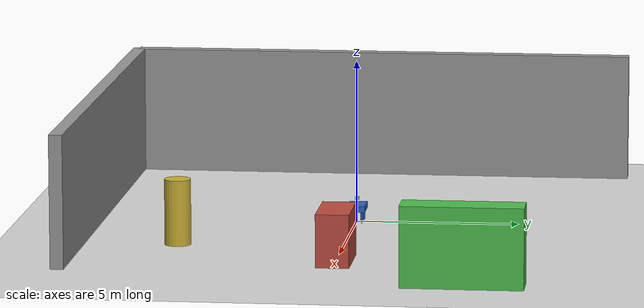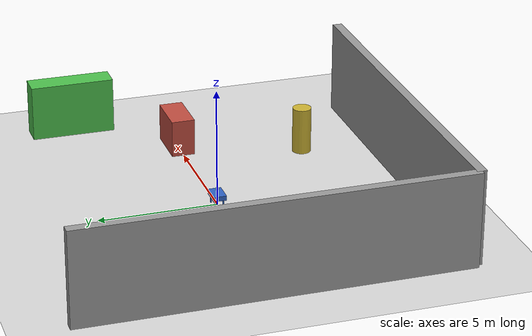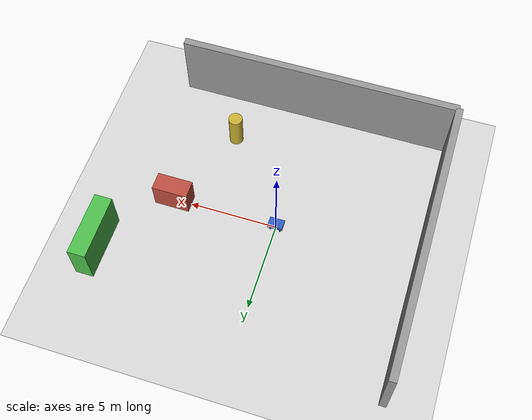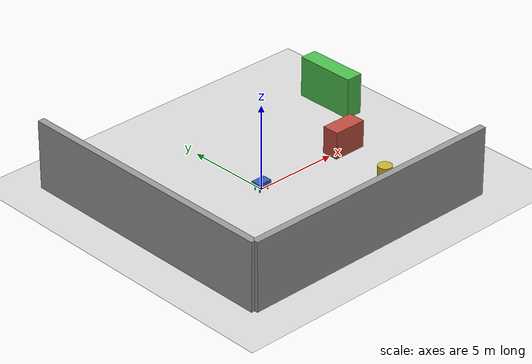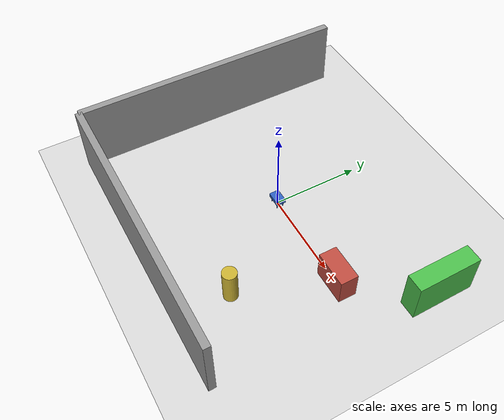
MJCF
<!-- MapPilot MuJoCo — 平地测试场景
     LiDAR: mujoco_ray_caster plugin (https://github.com/Albusgive/mujoco_ray_caster)
     编译后需设置: export MUJOCO_PLUGIN_PATH=/path/to/mujoco/build/bin/mujoco_plugin
-->
<mujoco model="open_field">
  <compiler angle="radian" autolimits="true"/>
  <option gravity="0 0 -9.81" timestep="0.002" integrator="RK4"/>

  <!-- ── mujoco_ray_caster plugin 声明 ──────────────────────────────── -->
  <extension>
    <plugin plugin="mujoco.sensor.ray_caster_lidar"/>
  </extension>

  <asset>
    <texture name="grid" type="2d" builtin="checker"
             rgb1=".92 .92 .92" rgb2=".78 .78 .78" width="512" height="512"/>
    <material name="grid_mat"  texture="grid" texrepeat="10 10" reflectance="0.05"/>
    <material name="robot_mat" rgba=".18 .38 .76 1"/>
    <material name="lidar_mat" rgba=".0 .78 .85 1"/>
    <material name="obs_mat"   rgba=".75 .3 .25 1"/>
  </asset>

  <worldbody>
    <!-- 地面 -->
    <geom name="floor" type="plane" size="80 80 0.1"
          material="grid_mat" conaffinity="1" condim="3"/>

    <!-- 测试障碍物（用于验证 LiDAR 命中）-->
    <geom name="box1"  type="box"      size="1.0 0.5 0.8" pos=" 6  0  0.8" material="obs_mat" conaffinity="1"/>
    <geom name="box2"  type="box"      size="0.5 1.8 1.2" pos=" 9  4  1.2" rgba=".3 .75 .3 1" conaffinity="1"/>
    <geom name="cyl1"  type="cylinder" size="0.4 1.0"     pos=" 4 -5  1.0" rgba=".8 .7 .2 1"  conaffinity="1"/>
    <geom name="wall1" type="box"      size="0.2 8.0 2.0" pos="-8  0  2.0" rgba=".6 .6 .6 1"  conaffinity="1"/>
    <geom name="wall2" type="box"      size="8.0 0.2 2.0" pos=" 0 -8  2.0" rgba=".6 .6 .6 1"  conaffinity="1"/>

    <!-- ── 机器人（待替换为自研 MJCF）──────────────────────────────────── -->
    <body name="base_link" pos="0 0 0.45">
      <freejoint name="root"/>

      <!-- 机体 placeholder -->
      <geom name="chassis" type="box" size="0.42 0.28 0.10"
            material="robot_mat" mass="22" conaffinity="1"/>

      <!-- 腿（简化，等待自研 URDF）-->
      <geom name="leg_fl" type="capsule" size="0.035" fromto=" 0.28  0.18 -0.10  0.28  0.18 -0.42" rgba=".15 .35 .7 1" mass="0.8"/>
      <geom name="leg_fr" type="capsule" size="0.035" fromto=" 0.28 -0.18 -0.10  0.28 -0.18 -0.42" rgba=".15 .35 .7 1" mass="0.8"/>
      <geom name="leg_rl" type="capsule" size="0.035" fromto="-.28  0.18 -0.10 -.28  0.18 -0.42" rgba=".15 .35 .7 1" mass="0.8"/>
      <geom name="leg_rr" type="capsule" size="0.035" fromto="-.28 -0.18 -0.10 -.28 -0.18 -0.42" rgba=".15 .35 .7 1" mass="0.8"/>

      <!-- Livox MID-360 安装体（机体顶部中央 +0.28m）-->
      <body name="lidar_link" pos="0 0 0.28">
        <geom name="lidar_housing" type="cylinder" size="0.060 0.048"
              material="lidar_mat" mass="0.52" conaffinity="0"/>
        <geom name="lidar_pole"    type="capsule"  size="0.018"
              fromto="0 0 0  0 0 -0.13" rgba=".3 .3 .3 1" mass="0.1"/>

        <site name="lidar_site" pos="0 0 0" size="0.001"/>
      </body>

      <inertial pos="0 0 0" mass="22" diaginertia="0.75 1.15 1.15"/>
    </body>

    <!-- 光源 -->
    <light name="sun"  pos="0 0 30" dir="0 0 -1"    diffuse=".85 .85 .85" specular=".2 .2 .2"/>
    <light name="fill" pos="5 5 15" dir="-1 -1 -0.5" diffuse=".3 .3 .3"/>
  </worldbody>

  <sensor>
    <plugin name="lidar_mid360" plugin="mujoco.sensor.ray_caster_lidar"
            objtype="site" objname="lidar_site" cutoff="70">
      <config key="fov_h"              value="360"/>
      <config key="fov_v"              value="59"/>
      <config key="size"               value="400 16"/>
      <config key="dis_range"          value="0.1 70"/>
      <config key="sensor_data_types"  value="pos_w noise_data"/>
      <config key="num_thread"         value="4"/>
    </plugin>
  </sensor>

</mujoco>
